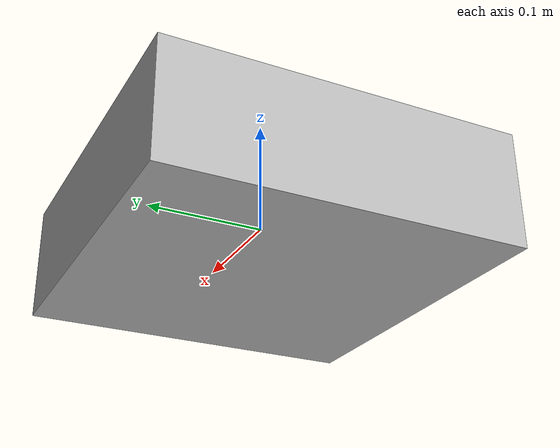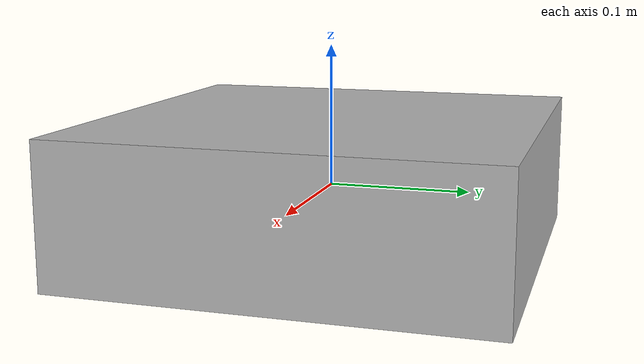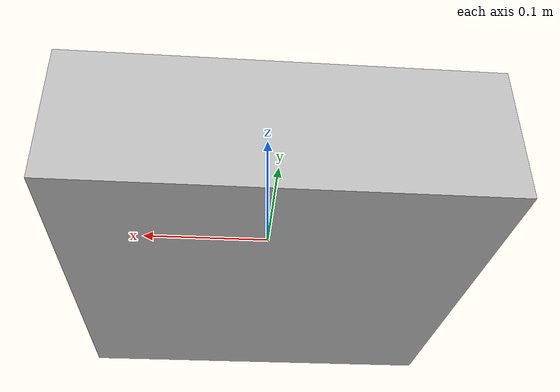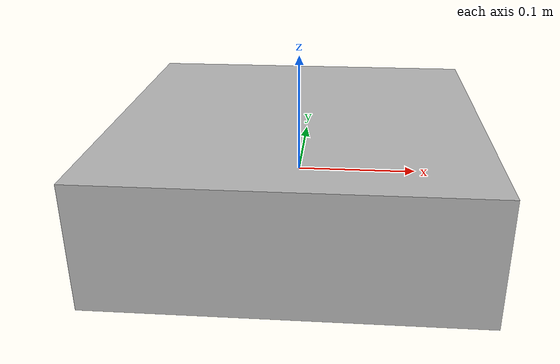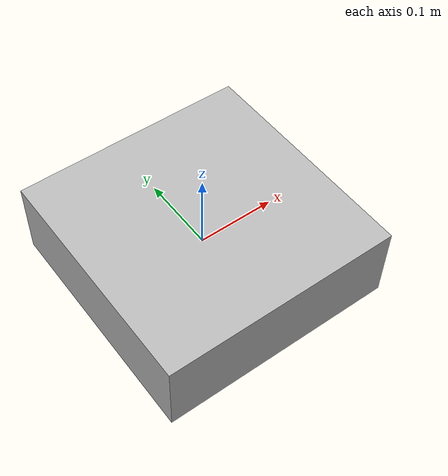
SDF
<?xml version="1.0" encoding="UTF-8"?>
<sdf version='1.9'>
  <model name='x500_depth'>
    <!-- Main drone body -->
    <link name='base_link'>
      <inertial>
        <mass>1.0</mass>
        <inertia>
          <ixx>0.01</ixx>
          <iyy>0.01</iyy>
          <izz>0.01</izz>
        </inertia>
      </inertial>
      <visual name='base_visual'>
        <geometry>
          <box>
            <size>0.3 0.3 0.1</size>
          </box>
        </geometry>
      </visual>
    </link>

    <!-- Rotor 0 (front-left, CCW) -->
    <link name='rotor_0'>
      <inertial>
        <mass>0.01</mass>
        <inertia>
          <ixx>0.00001</ixx>
          <iyy>0.00001</iyy>
          <izz>0.00001</izz>
        </inertia>
      </inertial>
      <visual name='rotor_0_visual'>
        <pose>0 0 0 0 0 0</pose>
        <geometry>
          <cylinder>
            <radius>0.1</radius>
            <length>0.02</length>
          </cylinder>
        </geometry>
      </visual>
    </link>

    <!-- Rotor 1 (front-right, CCW) -->
    <link name='rotor_1'>
      <inertial>
        <mass>0.01</mass>
        <inertia>
          <ixx>0.00001</ixx>
          <iyy>0.00001</iyy>
          <izz>0.00001</izz>
        </inertia>
      </inertial>
      <visual name='rotor_1_visual'>
        <pose>0 0 0 0 0 0</pose>
        <geometry>
          <cylinder>
            <radius>0.1</radius>
            <length>0.02</length>
          </cylinder>
        </geometry>
      </visual>
    </link>

    <!-- Rotor 2 (rear-left, CW) -->
    <link name='rotor_2'>
      <inertial>
        <mass>0.01</mass>
        <inertia>
          <ixx>0.00001</ixx>
          <iyy>0.00001</iyy>
          <izz>0.00001</izz>
        </inertia>
      </inertial>
      <visual name='rotor_2_visual'>
        <pose>0 0 0 0 0 0</pose>
        <geometry>
          <cylinder>
            <radius>0.1</radius>
            <length>0.02</length>
          </cylinder>
        </geometry>
      </visual>
    </link>

    <!-- Rotor 3 (rear-right, CW) -->
    <link name='rotor_3'>
      <inertial>
        <mass>0.01</mass>
        <inertia>
          <ixx>0.00001</ixx>
          <iyy>0.00001</iyy>
          <izz>0.00001</izz>
        </inertia>
      </inertial>
      <visual name='rotor_3_visual'>
        <pose>0 0 0 0 0 0</pose>
        <geometry>
          <cylinder>
            <radius>0.1</radius>
            <length>0.02</length>
          </cylinder>
        </geometry>
      </visual>
    </link>

    <!-- Camera link with fixed offset from base_link -->
    <link name='camera_link'>
      <inertial>
        <mass>0.1</mass>
        <inertia>
          <ixx>0.001</ixx>
          <iyy>0.001</iyy>
          <izz>0.001</izz>
        </inertia>
      </inertial>
      <visual name='camera_visual'>
        <geometry>
          <cylinder>
            <radius>0.02</radius>
            <length>0.05</length>
          </cylinder>
        </geometry>
      </visual>
    </link>

    <!-- Rotor joints (revolute around Z axis) -->
    <joint name='rotor_0_joint' type='revolute'>
      <parent>base_link</parent>
      <child>rotor_0</child>
      <origin xyz='0.127 -0.127 0.025' rpy='0 0 0'/>
      <axis xyz='0 0 1'/>
      <limit lower='0' upper='0' effort='0.0' velocity='0.0'/>
    </joint>

    <joint name='rotor_1_joint' type='revolute'>
      <parent>base_link</parent>
      <child>rotor_1</child>
      <origin xyz='-0.127 -0.127 0.025' rpy='0 0 0'/>
      <axis xyz='0 0 1'/>
      <limit lower='0' upper='0' effort='0.0' velocity='0.0'/>
    </joint>

    <joint name='rotor_2_joint' type='revolute'>
      <parent>base_link</parent>
      <child>rotor_2</child>
      <origin xyz='0.127 0.127 0.025' rpy='0 0 0'/>
      <axis xyz='0 0 1'/>
      <limit lower='0' upper='0' effort='0.0' velocity='0.0'/>
    </joint>

    <joint name='rotor_3_joint' type='revolute'>
      <parent>base_link</parent>
      <child>rotor_3</child>
      <origin xyz='-0.127 0.127 0.025' rpy='0 0 0'/>
      <axis xyz='0 0 1'/>
      <limit lower='0' upper='0' effort='0.0' velocity='0.0'/>
    </joint>

    <!-- Fixed joint connecting camera to drone body -->
    <joint name='camera_joint' type='fixed'>
      <parent>base_link</parent>
      <child>camera_link</child>
      <origin xyz='0.12 0.03 0.242' rpy='0 0 0'/>
    </joint>
  </model>
</sdf>
